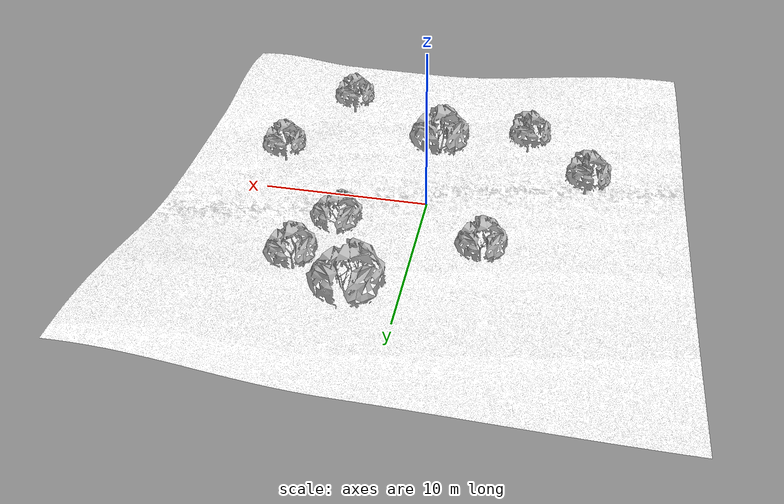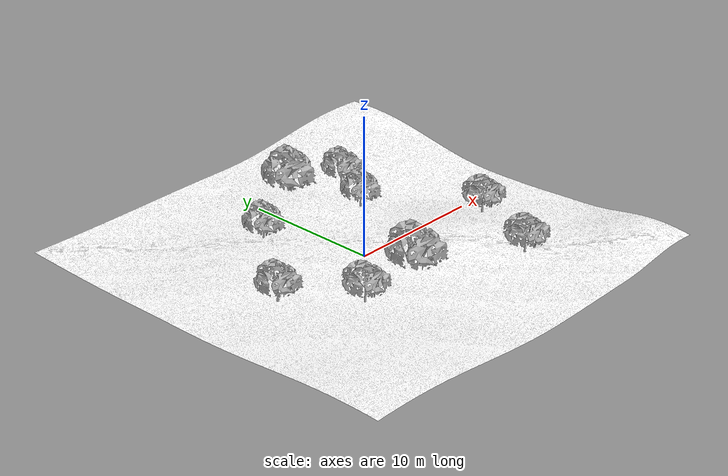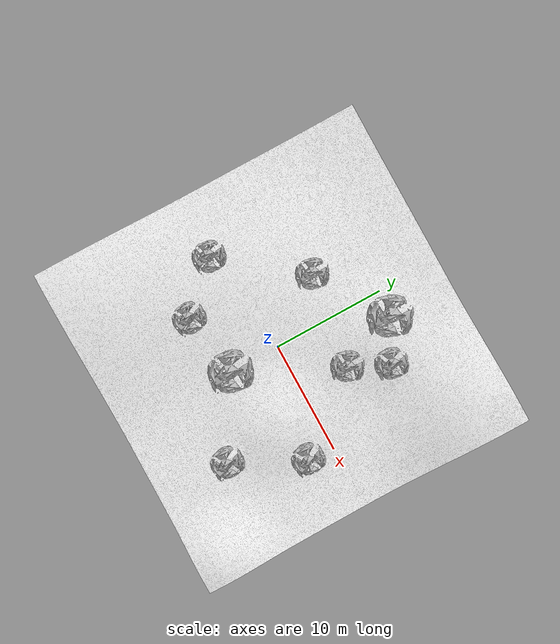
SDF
<!--
  Outdoor scenario from HRATC repository:
  https://github.com/ras-sight/hratc2014_framework
-->
<?xml version="1.0" encoding="UTF-8" ?>
<sdf version="1.4">
  <world name="default">
    <scene>
      <ambient>0.5 0.5 0.5 1</ambient>
      <background>0.5 0.5 0.5 1</background>
      <shadows>false</shadows>
    </scene>
    <physics type="ode">
      <gravity>0 0 -9.81</gravity>
      <ode>
        <solver>
          <type>quick</type>
          <iters>10</iters>
          <sor>1.3</sor>
        </solver>
        <constraints>
          <cfm>0.0</cfm>
          <erp>0.2</erp>
          <contact_max_correcting_vel>10</contact_max_correcting_vel>
          <contact_surface_layer>0.001</contact_surface_layer>
        </constraints>
      </ode>
      <max_step_size>0.001</max_step_size>
    </physics>
    <light type="directional" name="directional_light_1">
      <pose>0 20 20 0.1 0.1 0</pose>
      <diffuse>1 1 1 1</diffuse>
      <specular>1 1 1 1</specular>
      <attenuation>
        <range>300</range>
      </attenuation>
      <direction>0.1 0.1 -1</direction>
      <cast_shadows>false</cast_shadows>
    </light>
    <model name="landscape">
      <link name="landscape_link">
        <pose>-15.0 -15.0 0.5 0 0 0</pose>
        <collision name="landscape_collision">
          <geometry>
            <mesh>
	      <uri>file://scenario1.dae</uri>
              <scale>1 1 0.4</scale>
            </mesh>
          </geometry>
        </collision>
        <visual name="landscape">
          <geometry>
            <mesh>
	      <uri>file://scenario1.dae</uri>
              <scale>1 1 0.4</scale>
            </mesh>
          </geometry>
          <cast_shadows>false</cast_shadows>
        </visual>
      </link>
      <static>true</static>
    </model>

    <!-- Trees!!! -->
    <model name="tree1">
      <static>true</static>
      <link name="tree1_link">
	  <pose>3 3 0.6 0 0 0</pose>
	  <collision name="tree1_collision">
	      <geometry>
		  <mesh>
		    <uri>file://OliveTree1.dae</uri>
		    <scale>1 1 1</scale>
		  </mesh>
	      </geometry>
	  </collision>
	  <visual name="tree1_visual">
	      <geometry>
		<mesh>
		  <uri>file://OliveTree1.dae</uri>
		  <scale>1 1 1</scale>
		</mesh>
	      </geometry>
	      <cast_shadows>false</cast_shadows>
	  </visual>
      </link>
    </model>

    <model name="tree2">
      <static>true</static>
      <link name="tree2_link">
	  <pose>5 6 0.7 0 0 0.3</pose>
	  <collision name="tree2_collision">
	      <geometry>
		  <mesh>
		    <uri>file://OliveTree1.dae</uri>
		    <scale>1 1 1</scale>
		  </mesh>
	      </geometry>
	  </collision>
	  <visual name="tree2_visual">
	      <geometry>
		<mesh>
		  <uri>file://OliveTree1.dae</uri>
		  <scale>1 1 1</scale>
		</mesh>
	      </geometry>
	      <cast_shadows>false</cast_shadows>
	  </visual>
      </link>
    </model>

    <model name="tree3">
      <static>true</static>
      <link name="tree3_link">
	  <pose>1 8 0.9 0 0 0</pose>
	  <collision name="tree3_collision">
	      <geometry>
		  <mesh>
		    <uri>file://OliveTree2.dae</uri>
		    <scale>1 1 1</scale>
		  </mesh>
	      </geometry>
	  </collision>
	  <visual name="tree3_visual">
	      <geometry>
		<mesh>
		  <uri>file://OliveTree2.dae</uri>
		  <scale>1 1 1</scale>
		</mesh>
	      </geometry>
	      <cast_shadows>false</cast_shadows>
	  </visual>
      </link>
    </model>

    <model name="tree4">
      <static>true</static>
      <link name="tree4_link">
	  <pose>-5 4 0.8 0 0 0.1</pose>
	  <collision name="tree4_collision">
	      <geometry>
		  <mesh>
		    <uri>file://OliveTree1.dae</uri>
		    <scale>1 1 1</scale>
		  </mesh>
	      </geometry>
	  </collision>
	  <visual name="tree4_visual">
	      <geometry>
		<mesh>
		  <uri>file://OliveTree1.dae</uri>
		  <scale>1 1 1</scale>
		</mesh>
	      </geometry>
	      <cast_shadows>false</cast_shadows>
	  </visual>
      </link>
    </model>

    <model name="tree5">
      <static>true</static>
      <link name="tree5_link">
	  <pose>-10 -3 1.1 0 0 0.3</pose>
	  <collision name="tree5_collision">
	      <geometry>
		  <mesh>
		    <uri>file://OliveTree1.dae</uri>
		    <scale>1 1 1</scale>
		  </mesh>
	      </geometry>
	  </collision>
	  <visual name="tree5_visual">
	      <geometry>
		<mesh>
		  <uri>file://OliveTree1.dae</uri>
		  <scale>1 1 1</scale>
		</mesh>
	      </geometry>
	      <cast_shadows>false</cast_shadows>
	  </visual>
      </link>
    </model>

    <model name="tree6">
      <static>true</static>
      <link name="tree6_link">
	  <pose>-6 -7 1.02 0 0 0.5</pose>
	  <collision name="tree6_collision">
	      <geometry>
		  <mesh>
		    <uri>file://OliveTree1.dae</uri>
		    <scale>1 1 1</scale>
		  </mesh>
	      </geometry>
	  </collision>
	  <visual name="tree6_visual">
	      <geometry>
		<mesh>
		  <uri>file://OliveTree1.dae</uri>
		  <scale>1 1 1</scale>
		</mesh>
	      </geometry>
	      <cast_shadows>false</cast_shadows>
	  </visual>
      </link>
    </model>

    <model name="tree7">
      <static>true</static>
      <link name="tree7_link">
	  <pose>-1 -6 0.8 0 0 0.2</pose>
	  <collision name="tree7_collision">
	      <geometry>
		  <mesh>
		    <uri>file://OliveTree2.dae</uri>
		    <scale>1 1 1</scale>
		  </mesh>
	      </geometry>
	  </collision>
	  <visual name="tree7_visual">
	      <geometry>
		<mesh>
		  <uri>file://OliveTree2.dae</uri>
		  <scale>1 1 1</scale>
		</mesh>
	      </geometry>
	      <cast_shadows>false</cast_shadows>
	  </visual>
      </link>
    </model>

    <model name="tree8">
      <static>true</static>
      <link name="tree8_link">
	  <pose>9 -4 0.5 0 0 0.5</pose>
	  <collision name="tree8_collision">
	      <geometry>
		  <mesh>
		    <uri>file://OliveTree1.dae</uri>
		    <scale>1 1 1</scale>
		  </mesh>
	      </geometry>
	  </collision>
	  <visual name="tree8_visual">
	      <geometry>
		<mesh>
		  <uri>file://OliveTree1.dae</uri>
		  <scale>1 1 1</scale>
		</mesh>
	      </geometry>
	      <cast_shadows>false</cast_shadows>
	  </visual>
      </link>
    </model>

    <model name="tree9">
      <static>true</static>
      <link name="tree9_link">
	  <pose>6 -10 0.8 0 0 0.5</pose>
	  <collision name="tree9_collision">
	      <geometry>
		  <mesh>
		    <uri>file://OliveTree1.dae</uri>
		    <scale>1 1 1</scale>
		  </mesh>
	      </geometry>
	  </collision>
	  <visual name="tree9_visual">
	      <geometry>
		<mesh>
		  <uri>file://OliveTree1.dae</uri>
		  <scale>1 1 1</scale>
		</mesh>
	      </geometry>
	      <cast_shadows>false</cast_shadows>
	  </visual>
      </link>
    </model>

  </world>
</sdf>
